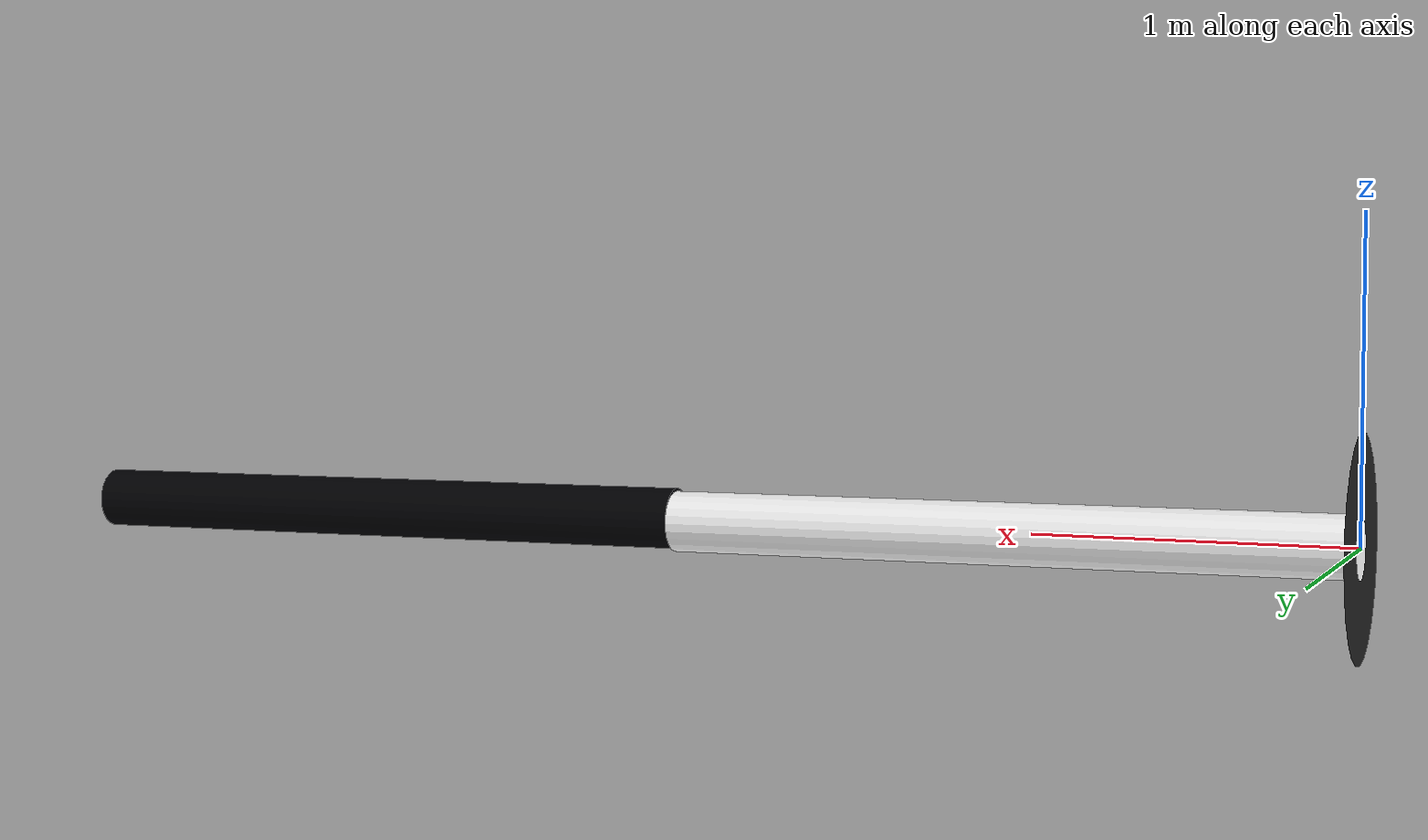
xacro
<?xml version="1.1" ?>

<robot name="mrm" xmlns:xacro="http://www.ros.org/wiki/xacro">

  <material name="blue">
    <color rgba="0 0 2.2 1"/>
  </material>

  <material name="white">
    <color rgba="1 1 1 1"/>
  </material>

  <link name="base_link">
      <visual>
          <origin rpy="0 1.575 0" xyz="0 0 0.0"/>
          <geometry>
              <cylinder radius="0.35" length="0.0"/>
          </geometry>
          <material name="black"/>
      </visual>
  </link>
  <joint name="joint0" type="revolute">
      <axis xyz="0 0 1" />
      <limit effort="1000.0" lower="-3.14" upper="3.14" velocity="0.5" />
      <origin rpy="0 0 0" xyz="0 0 0"/>
      <parent link="base_link"/>
      <child link="link2"/>
  </joint>

  <link name="link2">
      <visual>
          <origin rpy="0 1.575 0" xyz="1.1 0 0"/>
          <geometry>
              <cylinder radius="0.1" length="2.2"/>
          </geometry>
          <material name="white"/>
      </visual>
      <collision>
        <geometry>
          <cylinder length="2.2" radius="0.1"/>
        </geometry>
      </collision>
      <inertial>
        <mass value="0.6"/>
        <inertia ixx="0.001" ixy="0.0" ixz="0.0" iyy="0.001" iyz="0.0" izz="0.001"/>
      </inertial>
  </link>

  <joint name="joint1" type="revolute">
      <axis xyz="0 0 1" />
      <limit effort="1000.0" lower="-3.14" upper="3.14" velocity="0.5" />
      <origin rpy="0 0 0" xyz="2.2 0 0"/>
      <parent link="link2"/>
      <child link="link3"/>
  </joint>

  <link name="link3">
      <visual>
          <origin rpy="0 1.575 0" xyz="1.1 0 0"/>
          <geometry>
              <cylinder radius="0.1" length="2.2"/>
          </geometry>
          <material name="blue"/>
      </visual>
      <collision>
        <geometry>
          <cylinder length="2.2" radius="0.1"/>
        </geometry>
      </collision>
      <inertial>
        <mass value="0.6"/>
        <inertia ixx="0.001" ixy="0.0" ixz="0.0" iyy="0.001" iyz="0.0" izz="0.001"/>
      </inertial>
  </link>
</robot>
